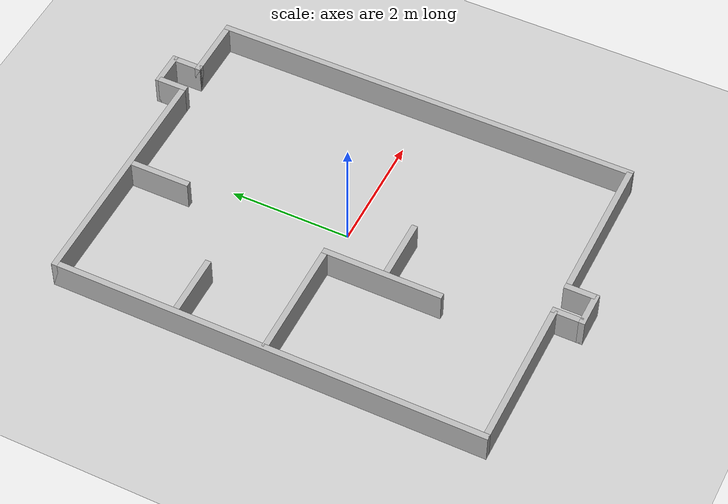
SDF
<sdf version="1.6">
 <world name="default">
  <include><uri>model://ground_plane</uri></include>
  <include><uri>model://sun</uri></include>
  <scene><shadows>false</shadows></scene>
  <physics type="ode">
   <real_time_update_rate>1000.0</real_time_update_rate>
   <max_step_size>0.001</max_step_size>
   <real_time_factor>1</real_time_factor>
  </physics>
  <model name="wall_north_left">
   <static>true</static>
   <link name="link">
    <collision name="collision"><geometry><box><size>4 0.1 0.5</size></box></geometry></collision>
    <visual name="visual"><geometry><box><size>4 0.1 0.5</size></box></geometry></visual>
    <pose>-0.8 3.55 0.25 0 0 0</pose>
   </link>
  </model>
  <model name="wall_north_right">
   <static>true</static>
   <link name="link">
    <collision name="collision"><geometry><box><size>1 0.1 0.5</size></box></geometry></collision>
    <visual name="visual"><geometry><box><size>1 0.1 0.5</size></box></geometry></visual>
    <pose>2.2 3.55 0.25 0 0 0</pose>
   </link>
  </model>
  <model name="wall_south_left">
   <static>true</static>
   <link name="link">
    <collision name="collision"><geometry><box><size>2.5 0.1 0.5</size></box></geometry></collision>
    <visual name="visual"><geometry><box><size>2.5 0.1 0.5</size></box></geometry></visual>
    <pose>-1.5 -3.55 0.25 0 0 0</pose>
   </link>
  </model>
  <model name="wall_south_right">
   <static>true</static>
   <link name="link">
    <collision name="collision"><geometry><box><size>2.5 0.1 0.5</size></box></geometry></collision>
    <visual name="visual"><geometry><box><size>2.5 0.1 0.5</size></box></geometry></visual>
    <pose>1.5 -3.55 0.25 0 0 0</pose>
   </link>
  </model>
  <model name="entry_nook">
   <static>true</static>
   <link name="link">
    <collision name="collision"><geometry><box><size>0.6 0.1 0.5</size></box></geometry></collision>
    <visual name="visual"><geometry><box><size>0.6 0.1 0.5</size></box></geometry></visual>
    <pose>0 -4 0.25 0 0 0</pose>
   </link>
  </model>
  <model name="exit_nook">
   <static>true</static>
   <link name="link">
    <collision name="collision"><geometry><box><size>0.6 0.1 0.5</size></box></geometry></collision>
    <visual name="visual"><geometry><box><size>0.6 0.1 0.5</size></box></geometry></visual>
    <pose>1.5 4 0.25 0 0 0</pose>
   </link>
  </model>
  <model name="exit_1">
   <static>true</static>
   <link name="link">
    <collision name="collision"><geometry><box><size>0.1 0.5 0.5</size></box></geometry></collision>
    <visual name="visual"><geometry><box><size>0.1 0.5 0.5</size></box></geometry></visual>
    <pose>1.75 3.75 0.25 0 0 0</pose>
   </link>
  </model>
  <model name="exit_2">
   <static>true</static>
   <link name="link">
    <collision name="collision"><geometry><box><size>0.1 0.5 0.5</size></box></geometry></collision>
    <visual name="visual"><geometry><box><size>0.1 0.5 0.5</size></box></geometry></visual>
    <pose>1.25 3.75 0.25 0 0 0</pose>
   </link>
  </model>
  <model name="entry_2">
   <static>true</static>
   <link name="link">
    <collision name="collision"><geometry><box><size>0.1 0.5 0.5</size></box></geometry></collision>
    <visual name="visual"><geometry><box><size>0.1 0.5 0.5</size></box></geometry></visual>
    <pose>-0.25 -3.75 0.25 0 0 0</pose>
   </link>
  </model>
  <model name="entry_1">
   <static>true</static>
   <link name="link">
    <collision name="collision"><geometry><box><size>0.1 0.5 0.5</size></box></geometry></collision>
    <visual name="visual"><geometry><box><size>0.1 0.5 0.5</size></box></geometry></visual>
    <pose>0.25 -3.75 0.25 0 0 0</pose>
   </link>
  </model>
  <model name="wall_east">
   <static>true</static>
   <link name="link">
    <collision name="collision"><geometry><box><size>0.1 7.2 0.5</size></box></geometry></collision>
    <visual name="visual"><geometry><box><size>0.1 7.2 0.5</size></box></geometry></visual>
    <pose>2.75 0 0.25 0 0 0</pose>
   </link>
  </model>
  <model name="wall_west">
   <static>true</static>
   <link name="link">
    <collision name="collision"><geometry><box><size>0.1 7.2 0.5</size></box></geometry></collision>
    <visual name="visual"><geometry><box><size>0.1 7.2 0.5</size></box></geometry></visual>
    <pose>-2.75 0 0.25 0 0 0</pose>
   </link>
  </model>
  <model name="inner_wall_5">
   <static>true</static>
   <link name="link">
    <collision name="collision"><geometry><box><size>0.1 1 0.5</size></box></geometry></collision>
    <visual name="visual"><geometry><box><size>0.1 1 0.5</size></box></geometry></visual>
    <pose>-0.5 3 0.25 0 0 0</pose>
   </link>
  </model>
  <model name="inner_wall_1">
   <static>true</static>
   <link name="link">
    <collision name="collision"><geometry><box><size>1 0.1 0.5</size></box></geometry></collision>
    <visual name="visual"><geometry><box><size>1 0.1 0.5</size></box></geometry></visual>
    <pose>-2.2 1.5 0.25 0 0 0</pose>
   </link>
  </model>
  <model name="inner_wall_2">
   <static>true</static>
   <link name="link">
    <collision name="collision"><geometry><box><size>1 0.1 0.5</size></box></geometry></collision>
    <visual name="visual"><geometry><box><size>1 0.1 0.5</size></box></geometry></visual>
    <pose>-0.2 -1 0.25 0 0 0</pose>
   </link>
  </model>
  <model name="inner_wall_3">
   <static>true</static>
   <link name="link">
    <collision name="collision"><geometry><box><size>2 0.1 0.5</size></box></geometry></collision>
    <visual name="visual"><geometry><box><size>2 0.1 0.5</size></box></geometry></visual>
    <pose>-1.75 0 0.25 0 0 0</pose>
   </link>
  </model>
  <model name="inner_wall_6">
   <static>true</static>
   <link name="link">
    <collision name="collision"><geometry><box><size>0.1 2 0.5</size></box></geometry></collision>
    <visual name="visual"><geometry><box><size>0.1 2 0.5</size></box></geometry></visual>
    <pose>-0.75 -0.95 0.25 0 0 0</pose>
   </link>
  </model>
 </world>
</sdf>
